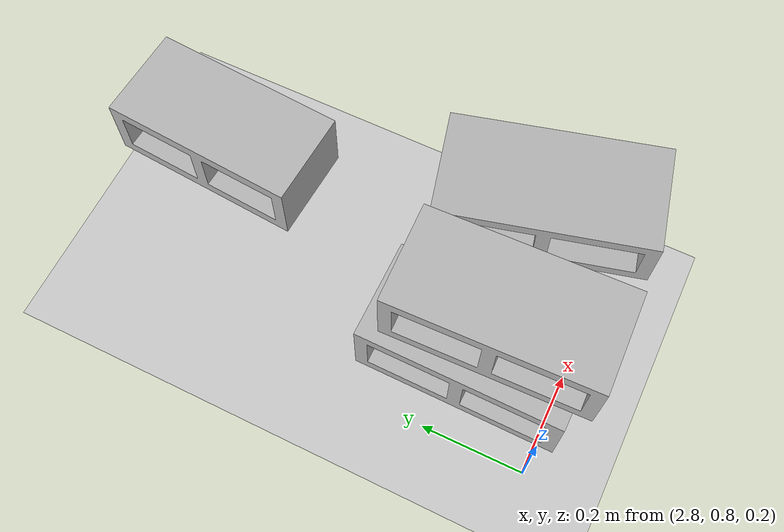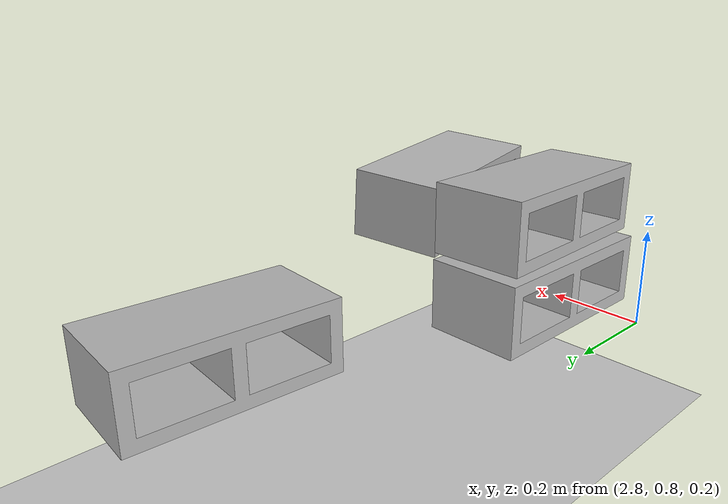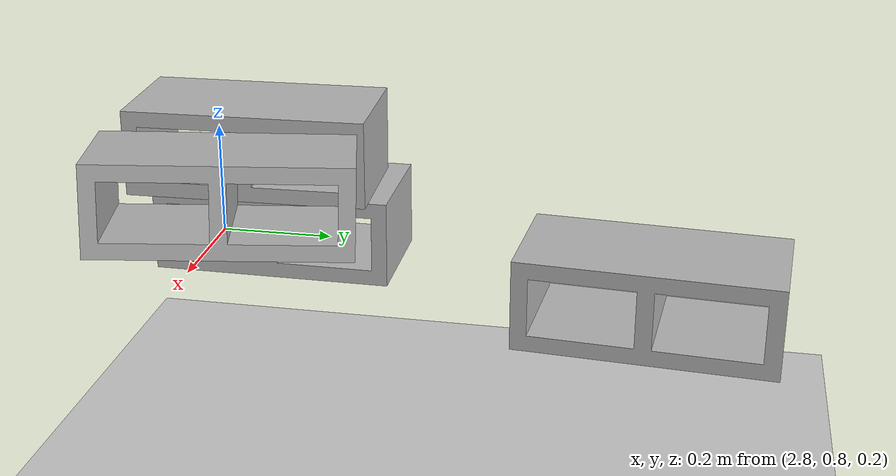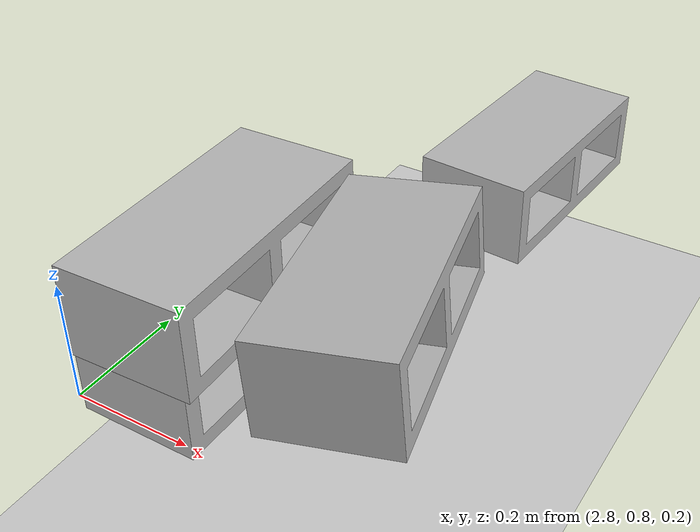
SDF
<sdf version="1.7">
 <world name="default">
  <model name="ground_plane">
   <static>1</static>
   <link name="link">
    <collision name="collision">
     <geometry><plane><normal>0 0 1</normal><size>100 100</size></plane></geometry>
     <surface><friction><ode><mu>100</mu><mu2>50</mu2></ode></friction></surface>
    </collision>
    <visual name="visual">
     <cast_shadows>0</cast_shadows>
     <geometry><plane><normal>0 0 1</normal><size>100 100</size></plane></geometry>
     <material>
      <script><uri>file://media/materials/scripts/gazebo.material</uri><name>Gazebo/Grey</name></script>
     </material>
    </visual>
   </link>
  </model>
  <model name="cinder_block_2_clone_5_clone_clone_6">
   <link name="link">
    <inertial>
     <pose>0 0 0.071438 0 -0 0</pose>
     <mass>5</mass>
     <inertia>
      <ixx>0.06908</ixx>
      <ixy>0</ixy>
      <iyy>0.028705</iyy>
      <ixz>0</ixz>
      <iyz>0</iyz>
      <izz>0.073708</izz>
     </inertia>
    </inertial>
    <visual name="visual">
     <geometry><mesh><uri>model://cinder_block_2/meshes/cinder_block.dae</uri></mesh></geometry>
    </visual>
    <collision name="top">
     <pose>0 0 0.130175 0 -0 0</pose>
     <geometry><box><size>0.19368 0.396875 0.0254</size></box></geometry>
     <surface>
      <contact><ode><max_vel>0.1</max_vel><min_depth>0.001</min_depth></ode></contact>
      <friction><ode><mu>1</mu><mu2>1</mu2></ode></friction>
     </surface>
    </collision>
    <collision name="bottom">
     <pose>0 0 0.0127 0 -0 0</pose>
     <geometry><box><size>0.19368 0.396875 0.0254</size></box></geometry>
     <surface>
      <contact><ode><max_vel>0.1</max_vel><min_depth>0.001</min_depth></ode></contact>
      <friction><ode><mu>1</mu><mu2>1</mu2></ode></friction>
     </surface>
    </collision>
    <collision name="left">
     <pose>0 -0.185738 0.071438 0 -0 0</pose>
     <geometry><box><size>0.19368 0.0254 0.092075</size></box></geometry>
     <surface>
      <contact><ode><max_vel>0.1</max_vel><min_depth>0.001</min_depth></ode></contact>
      <friction><ode><mu>1</mu><mu2>1</mu2></ode></friction>
     </surface>
    </collision>
    <collision name="right">
     <pose>0 0.185738 0.071438 0 -0 0</pose>
     <geometry><box><size>0.19368 0.0254 0.092075</size></box></geometry>
     <surface>
      <contact><ode><max_vel>0.1</max_vel><min_depth>0.001</min_depth></ode></contact>
      <friction><ode><mu>1</mu><mu2>1</mu2></ode></friction>
     </surface>
    </collision>
    <collision name="middle">
     <pose>0 0 0.071438 0 -0 0</pose>
     <geometry><box><size>0.19368 0.0254 0.092075</size></box></geometry>
     <surface>
      <contact><ode><max_vel>0.1</max_vel><min_depth>0.001</min_depth></ode></contact>
      <friction><ode><mu>1</mu><mu2>1</mu2></ode></friction>
     </surface>
    </collision>
   </link>
   <pose>3.14522 1.59512 0.228047 0.001001 0.000332 -0.071963</pose>
  </model>
  <model name="cinder_block_2_clone_5_clone_clone_9">
   <link name="link">
    <inertial>
     <pose>0 0 0.071438 0 -0 0</pose>
     <mass>5</mass>
     <inertia>
      <ixx>0.06908</ixx>
      <ixy>0</ixy>
      <iyy>0.028705</iyy>
      <ixz>0</ixz>
      <iyz>0</iyz>
      <izz>0.073708</izz>
     </inertia>
    </inertial>
    <visual name="visual">
     <geometry><mesh><uri>model://cinder_block_2/meshes/cinder_block.dae</uri></mesh></geometry>
    </visual>
    <collision name="top">
     <pose>0 0 0.130175 0 -0 0</pose>
     <geometry><box><size>0.19368 0.396875 0.0254</size></box></geometry>
     <surface>
      <contact><ode><max_vel>0.1</max_vel><min_depth>0.001</min_depth></ode></contact>
      <friction><ode><mu>1</mu><mu2>1</mu2></ode></friction>
     </surface>
    </collision>
    <collision name="bottom">
     <pose>0 0 0.0127 0 -0 0</pose>
     <geometry><box><size>0.19368 0.396875 0.0254</size></box></geometry>
     <surface>
      <contact><ode><max_vel>0.1</max_vel><min_depth>0.001</min_depth></ode></contact>
      <friction><ode><mu>1</mu><mu2>1</mu2></ode></friction>
     </surface>
    </collision>
    <collision name="left">
     <pose>0 -0.185738 0.071438 0 -0 0</pose>
     <geometry><box><size>0.19368 0.0254 0.092075</size></box></geometry>
     <surface>
      <contact><ode><max_vel>0.1</max_vel><min_depth>0.001</min_depth></ode></contact>
      <friction><ode><mu>1</mu><mu2>1</mu2></ode></friction>
     </surface>
    </collision>
    <collision name="right">
     <pose>0 0.185738 0.071438 0 -0 0</pose>
     <geometry><box><size>0.19368 0.0254 0.092075</size></box></geometry>
     <surface>
      <contact><ode><max_vel>0.1</max_vel><min_depth>0.001</min_depth></ode></contact>
      <friction><ode><mu>1</mu><mu2>1</mu2></ode></friction>
     </surface>
    </collision>
    <collision name="middle">
     <pose>0 0 0.071438 0 -0 0</pose>
     <geometry><box><size>0.19368 0.0254 0.092075</size></box></geometry>
     <surface>
      <contact><ode><max_vel>0.1</max_vel><min_depth>0.001</min_depth></ode></contact>
      <friction><ode><mu>1</mu><mu2>1</mu2></ode></friction>
     </surface>
    </collision>
   </link>
   <pose>2.94902 0.964086 0.228142 -2.3e-05 -0.00012 -0.003941</pose>
  </model>
  <model name="cinder_block_2_clone_5_clone_clone_11">
   <link name="link">
    <inertial>
     <pose>0 0 0.071438 0 -0 0</pose>
     <mass>5</mass>
     <inertia>
      <ixx>0.06908</ixx>
      <ixy>0</ixy>
      <iyy>0.028705</iyy>
      <ixz>0</ixz>
      <iyz>0</iyz>
      <izz>0.073708</izz>
     </inertia>
    </inertial>
    <visual name="visual">
     <geometry><mesh><uri>model://cinder_block_2/meshes/cinder_block.dae</uri></mesh></geometry>
    </visual>
    <collision name="top">
     <pose>0 0 0.130175 0 -0 0</pose>
     <geometry><box><size>0.19368 0.396875 0.0254</size></box></geometry>
     <surface>
      <contact><ode><max_vel>0.1</max_vel><min_depth>0.001</min_depth></ode></contact>
      <friction><ode><mu>1</mu><mu2>1</mu2></ode></friction>
     </surface>
    </collision>
    <collision name="bottom">
     <pose>0 0 0.0127 0 -0 0</pose>
     <geometry><box><size>0.19368 0.396875 0.0254</size></box></geometry>
     <surface>
      <contact><ode><max_vel>0.1</max_vel><min_depth>0.001</min_depth></ode></contact>
      <friction><ode><mu>1</mu><mu2>1</mu2></ode></friction>
     </surface>
    </collision>
    <collision name="left">
     <pose>0 -0.185738 0.071438 0 -0 0</pose>
     <geometry><box><size>0.19368 0.0254 0.092075</size></box></geometry>
     <surface>
      <contact><ode><max_vel>0.1</max_vel><min_depth>0.001</min_depth></ode></contact>
      <friction><ode><mu>1</mu><mu2>1</mu2></ode></friction>
     </surface>
    </collision>
    <collision name="right">
     <pose>0 0.185738 0.071438 0 -0 0</pose>
     <geometry><box><size>0.19368 0.0254 0.092075</size></box></geometry>
     <surface>
      <contact><ode><max_vel>0.1</max_vel><min_depth>0.001</min_depth></ode></contact>
      <friction><ode><mu>1</mu><mu2>1</mu2></ode></friction>
     </surface>
    </collision>
    <collision name="middle">
     <pose>0 0 0.071438 0 -0 0</pose>
     <geometry><box><size>0.19368 0.0254 0.092075</size></box></geometry>
     <surface>
      <contact><ode><max_vel>0.1</max_vel><min_depth>0.001</min_depth></ode></contact>
      <friction><ode><mu>1</mu><mu2>1</mu2></ode></friction>
     </surface>
    </collision>
   </link>
   <pose>3.22275 0.950569 0.367543 -0.032779 -0.078533 0.242178</pose>
  </model>
  <model name="cinder_block_2_clone_5_clone_clone_12">
   <link name="link">
    <inertial>
     <pose>0 0 0.071438 0 -0 0</pose>
     <mass>5</mass>
     <inertia>
      <ixx>0.06908</ixx>
      <ixy>0</ixy>
      <iyy>0.028705</iyy>
      <ixz>0</ixz>
      <iyz>0</iyz>
      <izz>0.073708</izz>
     </inertia>
    </inertial>
    <visual name="visual">
     <geometry><mesh><uri>model://cinder_block_2/meshes/cinder_block.dae</uri></mesh></geometry>
    </visual>
    <collision name="top">
     <pose>0 0 0.130175 0 -0 0</pose>
     <geometry><box><size>0.19368 0.396875 0.0254</size></box></geometry>
     <surface>
      <contact><ode><max_vel>0.1</max_vel><min_depth>0.001</min_depth></ode></contact>
      <friction><ode><mu>1</mu><mu2>1</mu2></ode></friction>
     </surface>
    </collision>
    <collision name="bottom">
     <pose>0 0 0.0127 0 -0 0</pose>
     <geometry><box><size>0.19368 0.396875 0.0254</size></box></geometry>
     <surface>
      <contact><ode><max_vel>0.1</max_vel><min_depth>0.001</min_depth></ode></contact>
      <friction><ode><mu>1</mu><mu2>1</mu2></ode></friction>
     </surface>
    </collision>
    <collision name="left">
     <pose>0 -0.185738 0.071438 0 -0 0</pose>
     <geometry><box><size>0.19368 0.0254 0.092075</size></box></geometry>
     <surface>
      <contact><ode><max_vel>0.1</max_vel><min_depth>0.001</min_depth></ode></contact>
      <friction><ode><mu>1</mu><mu2>1</mu2></ode></friction>
     </surface>
    </collision>
    <collision name="right">
     <pose>0 0.185738 0.071438 0 -0 0</pose>
     <geometry><box><size>0.19368 0.0254 0.092075</size></box></geometry>
     <surface>
      <contact><ode><max_vel>0.1</max_vel><min_depth>0.001</min_depth></ode></contact>
      <friction><ode><mu>1</mu><mu2>1</mu2></ode></friction>
     </surface>
    </collision>
    <collision name="middle">
     <pose>0 0 0.071438 0 -0 0</pose>
     <geometry><box><size>0.19368 0.0254 0.092075</size></box></geometry>
     <surface>
      <contact><ode><max_vel>0.1</max_vel><min_depth>0.001</min_depth></ode></contact>
      <friction><ode><mu>1</mu><mu2>1</mu2></ode></friction>
     </surface>
    </collision>
   </link>
   <pose>2.97907 0.931906 0.370983 -1.6e-05 -0.000365 0.030508</pose>
  </model>
 </world>
</sdf>
